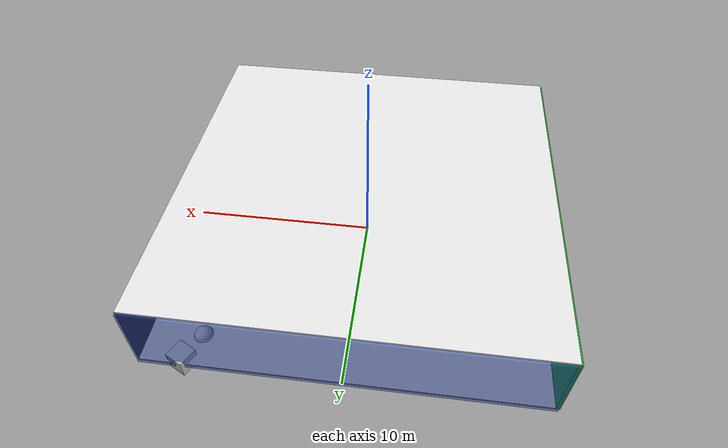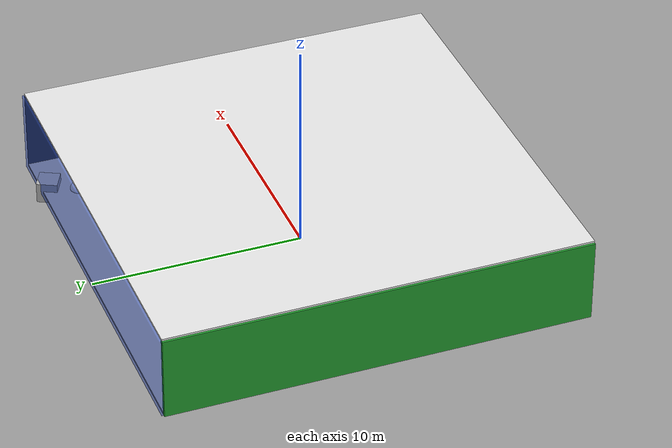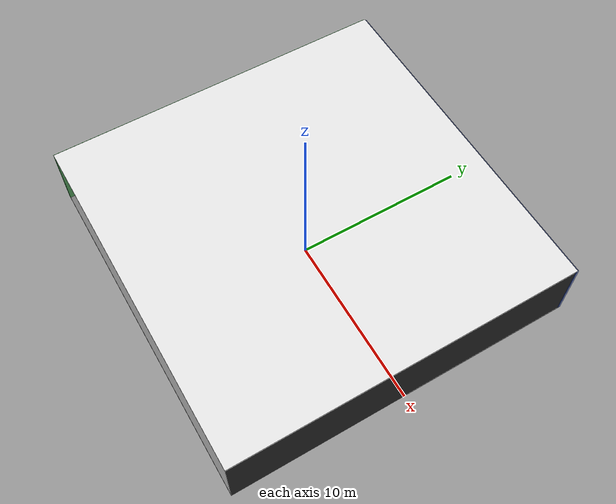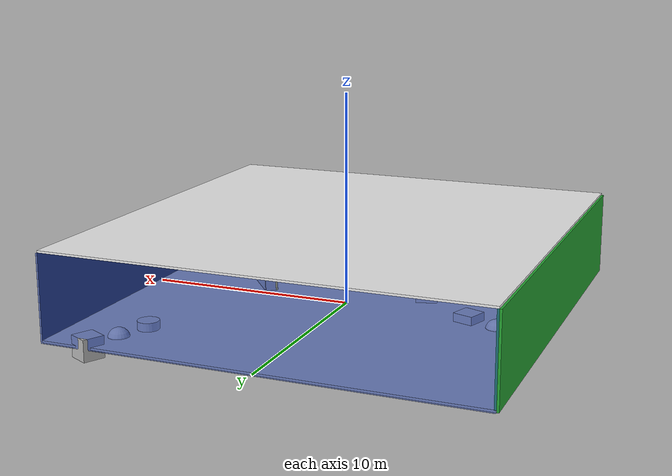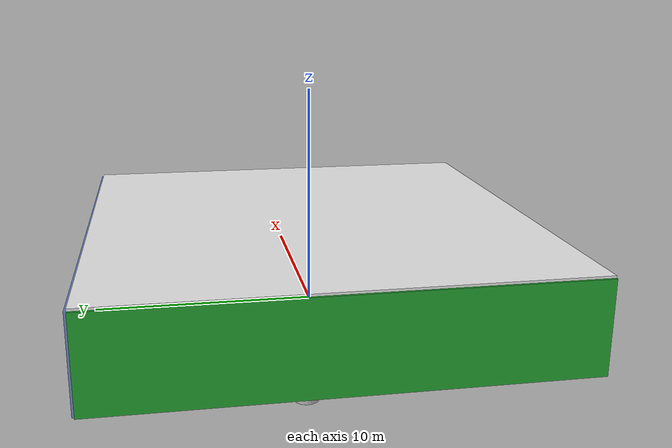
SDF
<sdf version="1.4">
 <world name="default">
  <physics type="ode">
   <max_step_size>0.001</max_step_size>
   <real_time_factor>1</real_time_factor>
   <real_time_update_rate>1000</real_time_update_rate>
   <gravity>0 0 -9.8</gravity>
  </physics>
  <scene><ambient>0.4 0.4 0.4 1</ambient><background>0.7 0.7 0.7 1</background><shadows>1</shadows></scene>
  <model name="Surrounding">
   <static>1</static>
   <link name="Ceiling">
    <collision name="Ceiling_Collision"><geometry><box><size>20 20 0.1</size></box></geometry></collision>
    <visual name="Ceiling_Visual">
     <geometry><box><size>20 20 0.1</size></box></geometry>
     <material>
      <script><uri>file://media/materials/scripts/gazebo.material</uri><name>Gazebo/WhiteGlow</name></script>
     </material>
    </visual>
    <pose>0 0 4.05 0 0 0</pose>
   </link>
   <link name="Wall_South">
    <collision name="Wall_South_Collision">
     <geometry><box><size>20 0 4</size></box></geometry>
     <pose>0 0 2 0 -0 0</pose>
    </collision>
    <visual name="Wall_South_Visual">
     <pose>0 0 2 0 -0 0</pose>
     <geometry><box><size>20 0 4</size></box></geometry>
     <material>
      <script><uri>file://media/materials/scripts/gazebo.material</uri><name>Gazebo/GreyTransparent</name></script>
     </material>
    </visual>
    <velocity_decay><linear>0</linear><angular>0</angular></velocity_decay>
    <pose>0 -10 0 0 -0 0</pose>
   </link>
   <link name="Wall_East">
    <collision name="Wall_21_Collision">
     <geometry><box><size>20 0 4</size></box></geometry>
     <pose>0 0 2 0 -0 0</pose>
    </collision>
    <visual name="Wall_21_Visual">
     <pose>0 0 2 0 -0 0</pose>
     <geometry><box><size>20 0 4</size></box></geometry>
     <material>
      <script><uri>file://media/materials/scripts/gazebo.material</uri><name>Gazebo/FlatBlack</name></script>
     </material>
    </visual>
    <velocity_decay><linear>0</linear><angular>0</angular></velocity_decay>
    <pose>10 0 0 0 -0 1.5708</pose>
   </link>
   <link name="Wall_North">
    <collision name="Wall_22_Collision">
     <geometry><box><size>20 0.2 4</size></box></geometry>
     <pose>0 0 2 0 -0 0</pose>
    </collision>
    <visual name="Wall_22_Visual">
     <pose>0 0 2 0 -0 0</pose>
     <geometry><box><size>20 0.2 4</size></box></geometry>
     <material>
      <script><uri>file://media/materials/scripts/gazebo.material</uri><name>Gazebo/BlueTransparent</name></script>
     </material>
    </visual>
    <velocity_decay><linear>0</linear><angular>0</angular></velocity_decay>
    <pose>0 10 0 0 -0 0</pose>
   </link>
   <link name="Wall_West">
    <collision name="Wall_23_Collision">
     <geometry><box><size>20 0.2 4</size></box></geometry>
     <pose>0 0 2 0 -0 0</pose>
    </collision>
    <visual name="Wall_23_Visual">
     <pose>0 0 2 0 -0 0</pose>
     <geometry><box><size>20 0.2 4</size></box></geometry>
     <material>
      <script><uri>file://media/materials/scripts/gazebo.material</uri><name>Gazebo/GreenGlow</name></script>
     </material>
    </visual>
    <velocity_decay><linear>0</linear><angular>0</angular></velocity_decay>
    <pose>-10 0 0 0 0 -1.5708</pose>
   </link>
   <link name="Ground_link">
    <collision name="collision">
     <pose>0 0 .05 0 -0 0</pose>
     <geometry><box><size>20 20 0.1</size></box></geometry>
    </collision>
    <visual name="visual">
     <pose>0 0 .05 0 -0 0</pose>
     <geometry><box><size>20 20 0.1</size></box></geometry>
     <material>
      <script><uri>file://media/materials/scripts/gazebo.material</uri><name>Gazebo/LightOn</name></script>
     </material>
    </visual>
   </link>
   <static>1</static>
  </model>
  <spherical_coordinates>
   <surface_model>EARTH_WGS84</surface_model>
   <latitude_deg>0</latitude_deg>
   <longitude_deg>0</longitude_deg>
   <elevation>0</elevation>
   <heading_deg>0</heading_deg>
  </spherical_coordinates>
  <light name="lightball_0" type="diffuse">
   <diffuse>0.8 0.8 0.8 1</diffuse>
   <specular>0.2 0.2 0.2 1</specular>
   <attenuation>
    <range>100</range>
    <constant>0.7</constant>
    <linear>0.01</linear>
    <quadratic>0.001</quadratic>
   </attenuation>
   <direction>-0.5 0.1 -0.9</direction>
   <pose>-2.66802603371 3.61333301947 0.765697689125 0 0 0</pose>
  </light>
  <light name="lightball_1" type="diffuse">
   <diffuse>0.8 0.8 0.8 1</diffuse>
   <specular>0.2 0.2 0.2 1</specular>
   <attenuation>
    <range>100</range>
    <constant>0.7</constant>
    <linear>0.01</linear>
    <quadratic>0.001</quadratic>
   </attenuation>
   <direction>-0.5 0.1 -0.9</direction>
   <pose>2.80738048687 5.41820412105 3.05951641056 0 0 0</pose>
  </light>
  <light name="lightball_2" type="diffuse">
   <diffuse>0.8 0.8 0.8 1</diffuse>
   <specular>0.2 0.2 0.2 1</specular>
   <attenuation>
    <range>100</range>
    <constant>0.7</constant>
    <linear>0.01</linear>
    <quadratic>0.001</quadratic>
   </attenuation>
   <direction>-0.5 0.1 -0.9</direction>
   <pose>5.01102892972 4.71813233569 3.30665507367 0 0 0</pose>
  </light>
  <light name="lightball_3" type="diffuse">
   <diffuse>0.8 0.8 0.8 1</diffuse>
   <specular>0.2 0.2 0.2 1</specular>
   <attenuation>
    <range>100</range>
    <constant>0.7</constant>
    <linear>0.01</linear>
    <quadratic>0.001</quadratic>
   </attenuation>
   <direction>-0.5 0.1 -0.9</direction>
   <pose>-0.734820331758 0.125020823253 2.40413693624 0 0 0</pose>
  </light>
  <light name="lightball_4" type="diffuse">
   <diffuse>0.8 0.8 0.8 1</diffuse>
   <specular>0.2 0.2 0.2 1</specular>
   <attenuation>
    <range>100</range>
    <constant>0.7</constant>
    <linear>0.01</linear>
    <quadratic>0.001</quadratic>
   </attenuation>
   <direction>-0.5 0.1 -0.9</direction>
   <pose>9.92261202112 -4.61572497229 3.49402600061 0 0 0</pose>
  </light>
  <light name="lightball_5" type="diffuse">
   <diffuse>0.8 0.8 0.8 1</diffuse>
   <specular>0.2 0.2 0.2 1</specular>
   <attenuation>
    <range>100</range>
    <constant>0.7</constant>
    <linear>0.01</linear>
    <quadratic>0.001</quadratic>
   </attenuation>
   <direction>-0.5 0.1 -0.9</direction>
   <pose>5.49268467625 4.61011221358 1.26114253935 0 0 0</pose>
  </light>
  <light name="lightball_6" type="diffuse">
   <diffuse>0.8 0.8 0.8 1</diffuse>
   <specular>0.2 0.2 0.2 1</specular>
   <attenuation>
    <range>100</range>
    <constant>0.7</constant>
    <linear>0.01</linear>
    <quadratic>0.001</quadratic>
   </attenuation>
   <direction>-0.5 0.1 -0.9</direction>
   <pose>8.22684310839 -1.00341346878 1.95915430305 0 0 0</pose>
  </light>
  <light name="lightball_7" type="diffuse">
   <diffuse>0.8 0.8 0.8 1</diffuse>
   <specular>0.2 0.2 0.2 1</specular>
   <attenuation>
    <range>100</range>
    <constant>0.7</constant>
    <linear>0.01</linear>
    <quadratic>0.001</quadratic>
   </attenuation>
   <direction>-0.5 0.1 -0.9</direction>
   <pose>-4.21488735123 -2.27299019937 2.94836227957 0 0 0</pose>
  </light>
  <light name="lightball_8" type="diffuse">
   <diffuse>0.8 0.8 0.8 1</diffuse>
   <specular>0.2 0.2 0.2 1</specular>
   <attenuation>
    <range>100</range>
    <constant>0.7</constant>
    <linear>0.01</linear>
    <quadratic>0.001</quadratic>
   </attenuation>
   <direction>-0.5 0.1 -0.9</direction>
   <pose>9.34597574044 7.63993849049 2.00883935844 0 0 0</pose>
  </light>
  <light name="lightball_9" type="diffuse">
   <diffuse>0.8 0.8 0.8 1</diffuse>
   <specular>0.2 0.2 0.2 1</specular>
   <attenuation>
    <range>100</range>
    <constant>0.7</constant>
    <linear>0.01</linear>
    <quadratic>0.001</quadratic>
   </attenuation>
   <direction>-0.5 0.1 -0.9</direction>
   <pose>9.96100833111 0.180668550494 1.14799554019 0 0 0</pose>
  </light>
  <light name="lightball_10" type="diffuse">
   <diffuse>0.8 0.8 0.8 1</diffuse>
   <specular>0.2 0.2 0.2 1</specular>
   <attenuation>
    <range>100</range>
    <constant>0.7</constant>
    <linear>0.01</linear>
    <quadratic>0.001</quadratic>
   </attenuation>
   <direction>-0.5 0.1 -0.9</direction>
   <pose>8.25075513262 0.723373666378 1.34452360364 0 0 0</pose>
  </light>
  <light name="lightball_11" type="diffuse">
   <diffuse>0.8 0.8 0.8 1</diffuse>
   <specular>0.2 0.2 0.2 1</specular>
   <attenuation>
    <range>100</range>
    <constant>0.7</constant>
    <linear>0.01</linear>
    <quadratic>0.001</quadratic>
   </attenuation>
   <direction>-0.5 0.1 -0.9</direction>
   <pose>-9.04026461382 6.77330682664 0.830916014065 0 0 0</pose>
  </light>
  <include><uri>model://table</uri><pose>-7.46265316904 -4.60877125962 0 0 0 1.60260400301</pose></include>
  <include>
   <uri>model://textured_shapes</uri>
   <pose>-7.59140374565 1.11372748592 0 0 0 1.23642282369</pose>
  </include>
  <include>
   <uri>model://textured_shapes</uri>
   <pose>-4.85622086005 -2.09599804682 0 0 0 1.894090047</pose>
  </include>
  <include>
   <uri>model://robocup_3Dsim_goal</uri>
   <pose>4.48012115292 -1.18206804793 0 0 0 0.681924551082</pose>
  </include>
  <include>
   <uri>model://textured_shapes</uri>
   <pose>7.27014096313 8.28046980618 0 0 0 2.67438373572</pose>
  </include>
 </world>
</sdf>

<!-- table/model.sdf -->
<sdf version="1.5">
  <model name="table">
    <static>true</static>
    <link name="link">
      <collision name="surface">
        <pose>0 0 1.0 0 0 0</pose>
        <geometry>
          <box>
            <size>1.5 0.8 0.03</size>
          </box>
        </geometry>
        <surface>
          <friction>
            <ode>
              <mu>0.6</mu>
              <mu2>0.6</mu2>
            </ode>
          </friction>
        </surface>
      </collision>
      <visual name="visual1">
        <pose>0 0 1.0 0 0 0</pose>
        <geometry>
          <box>
            <size>1.5 0.8 0.03</size>
          </box>
        </geometry>
        <material>
          <script>
            <uri>model://media/materials/scripts/gazebo.material</uri>
            <name>Gazebo/Wood</name>
          </script>
        </material>
      </visual>
      <collision name="front_left_leg">
        <pose>0.68 0.38 0.5 0 0 0</pose>
        <geometry>
          <cylinder>
            <radius>0.02</radius>
            <length>1.0</length>
          </cylinder>
        </geometry>
      </collision>
      <visual name="front_left_leg">
        <pose>0.68 0.38 0.5 0 0 0</pose>
        <geometry>
          <cylinder>
            <radius>0.02</radius>
            <length>1.0</length>
          </cylinder>
        </geometry>
        <material>
          <script>
            <uri>model://media/materials/scripts/gazebo.material</uri>
            <name>Gazebo/Grey</name>
          </script>
        </material>
      </visual>
      <collision name="front_right_leg">
        <pose>0.68 -0.38 0.5 0 0 0</pose>
        <geometry>
          <cylinder>
            <radius>0.02</radius>
            <length>1.0</length>
          </cylinder>
        </geometry>
      </collision>
      <visual name="front_right_leg">
        <pose>0.68 -0.38 0.5 0 0 0</pose>
        <geometry>
          <cylinder>
            <radius>0.02</radius>
            <length>1.0</length>
          </cylinder>
        </geometry>
        <material>
          <script>
            <uri>model://media/materials/scripts/gazebo.material</uri>
            <name>Gazebo/Grey</name>
          </script>
        </material>
      </visual>
      <collision name="back_right_leg">
        <pose>-0.68 -0.38 0.5 0 0 0</pose>
        <geometry>
          <cylinder>
            <radius>0.02</radius>
            <length>1.0</length>
          </cylinder>
        </geometry>
      </collision>
      <visual name="back_right_leg">
        <pose>-0.68 -0.38 0.5 0 0 0</pose>
        <geometry>
          <cylinder>
            <radius>0.02</radius>
            <length>1.0</length>
          </cylinder>
        </geometry>
        <material>
          <script>
            <uri>model://media/materials/scripts/gazebo.material</uri>
            <name>Gazebo/Grey</name>
          </script>
        </material>
      </visual>
      <collision name="back_left_leg">
        <pose>-0.68 0.38 0.5 0 0 0</pose>
        <geometry>
          <cylinder>
            <radius>0.02</radius>
            <length>1.0</length>
          </cylinder>
        </geometry>
      </collision>
      <visual name="back_left_leg">
        <pose>-0.68 0.38 0.5 0 0 0</pose>
        <geometry>
          <cylinder>
            <radius>0.02</radius>
            <length>1.0</length>
          </cylinder>
        </geometry>
        <material>
          <script>
            <uri>model://media/materials/scripts/gazebo.material</uri>
            <name>Gazebo/Grey</name>
          </script>
        </material>
      </visual>
    </link>
  </model>
</sdf>

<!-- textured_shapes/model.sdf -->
<sdf version="1.6">
  <model name="textured_shapes">
    <pose>0 0 0.5 0 0 0</pose>
    <link name="box">
      <pose>0 -1.5 0 0 0 0</pose>
      <collision name="collision">
        <geometry>
          <box>
            <size>1 1 1</size>
          </box>
        </geometry>
      </collision>
      <visual name="visual">
        <geometry>
          <box>
            <size>1 1 1</size>
          </box>
        </geometry>
        <material>
          <script>
            <uri>model://../model_source/models/textured_shapes/materials/scripts</uri>
            <uri>model://../model_source/models/textured_shapes/materials/textures</uri>
            <name>TexturedShape/Squares</name>
          </script>
        </material>
      </visual>
    </link>
    <link name="sphere">
      <collision name="collision">
        <geometry>
          <sphere>
            <radius>0.5</radius>
          </sphere>
        </geometry>
      </collision>
      <visual name="visual">
        <geometry>
          <sphere>
            <radius>0.5</radius>
          </sphere>
        </geometry>
        <material>
          <script>
            <uri>model://../model_source/models/textured_shapes/materials/scripts</uri>
            <uri>model://../model_source/models/textured_shapes/materials/textures</uri>
            <name>TexturedShape/Squares</name>
          </script>
        </material>
      </visual>
    </link>
    <link name="cylinder">
      <pose>0 1.5 0 0 0 0</pose>
      <collision name="collision">
        <geometry>
          <cylinder>
            <radius>0.5</radius>
            <length>1</length>
          </cylinder>
        </geometry>
      </collision>
      <visual name="visual">
        <geometry>
          <cylinder>
            <radius>0.5</radius>
            <length>1</length>
          </cylinder>
        </geometry>
        <material>
          <script>
            <uri>model://../model_source/models/textured_shapes/materials/scripts</uri>
            <uri>model://../model_source/models/textured_shapes/materials/textures</uri>
            <name>TexturedShape/Squares</name>
          </script>
        </material>
      </visual>
    </link>
  </model>
</sdf>

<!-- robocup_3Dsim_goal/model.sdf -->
<sdf version="1.5">
  <model name="robocup_3d_goal">
    <static>true</static>
    <link name="left_post">
      <pose>0 1.05 0.45 0 0 0</pose>
      <collision name="collision">
        <geometry>
          <cylinder>
            <radius>0.05</radius>
            <length>0.9</length>
          </cylinder>
        </geometry>
      </collision>
      <visual name="visual">
        <geometry>
          <cylinder>
            <radius>0.05</radius>
            <length>0.9</length>
          </cylinder>
        </geometry>
        <material>
          <script>
            <uri>file://media/materials/scripts/gazebo.material</uri>
            <name>Gazebo/ZincYellow</name>
          </script>
        </material>
      </visual>
    </link>
    <link name="left_support_horiz_lower">
      <pose>0.30 1.05 0.01 0 0 0</pose>
      <collision name="collision">
        <geometry>
          <box>
            <size>0.50 0.02 0.02</size>
          </box>
        </geometry>
      </collision>
      <visual name="visual">
        <geometry>
          <box>
            <size>0.50 0.02 0.02</size>
          </box>
        </geometry>
        <material>
          <script>
            <uri>file://media/materials/scripts/gazebo.material</uri>
            <name>Gazebo/White</name>
          </script>
        </material>
      </visual>
    </link>
    <link name="left_support_horiz_upper">
      <pose>0.30 1.05 0.79 0 0 0</pose>
      <collision name="collision">
        <geometry>
          <box>
            <size>0.50 0.02 0.02</size>
          </box>
        </geometry>
      </collision>
      <visual name="visual">
        <geometry>
          <box>
            <size>0.50 0.02 0.02</size>
          </box>
        </geometry>
        <material>
          <script>
            <uri>file://media/materials/scripts/gazebo.material</uri>
            <name>Gazebo/White</name>
          </script>
        </material>
      </visual>
    </link>
    <link name="left_support_vertical">
      <pose>0.56 1.05 0.4 0 1.5708 0</pose>
      <collision name="collision">
        <geometry>
          <box>
            <size>0.80 0.02 0.02</size>
          </box>
        </geometry>
      </collision>
      <visual name="visual">
        <geometry>
          <box>
            <size>0.80 0.02 0.02</size>
          </box>
        </geometry>
        <material>
          <script>
            <uri>file://media/materials/scripts/gazebo.material</uri>
            <name>Gazebo/White</name>
          </script>
        </material>
      </visual>
    </link>
    <link name="right_support_horiz_lower">
      <pose>0.30 -1.05 0.01 0 0 0</pose>
      <collision name="collision">
        <geometry>
          <box>
            <size>0.50 0.02 0.02</size>
          </box>
        </geometry>
      </collision>
      <visual name="visual">
        <geometry>
          <box>
            <size>0.50 0.02 0.02</size>
          </box>
        </geometry>
        <material>
          <script>
            <uri>file://media/materials/scripts/gazebo.material</uri>
            <name>Gazebo/White</name>
          </script>
        </material>
      </visual>
    </link>
    <link name="right_support_horiz_upper">
      <pose>0.30 -1.05 0.79 0 0 0</pose>
      <collision name="collision">
        <geometry>
          <box>
            <size>0.50 0.02 0.02</size>
          </box>
        </geometry>
      </collision>
      <visual name="visual">
        <geometry>
          <box>
            <size>0.50 0.02 0.02</size>
          </box>
        </geometry>
        <material>
          <script>
            <uri>file://media/materials/scripts/gazebo.material</uri>
            <name>Gazebo/White</name>
          </script>
        </material>
      </visual>
    </link>
    <link name="right_support_vertical">
      <pose>0.56 -1.05 0.4 0 1.5708 0</pose>
      <collision name="collision">
        <geometry>
          <box>
            <size>0.80 0.02 0.02</size>
          </box>
        </geometry>
      </collision>
      <visual name="visual">
        <geometry>
          <box>
            <size>0.80 0.02 0.02</size>
          </box>
        </geometry>
        <material>
          <script>
            <uri>file://media/materials/scripts/gazebo.material</uri>
            <name>Gazebo/White</name>
          </script>
        </material>
      </visual>
    </link>
    <link name="center_support_horiz_lower">
      <pose>0.56 0 0.01 0 1.5708 0</pose>
      <collision name="collision">
        <geometry>
          <box>
            <size>0.02 2.08 0.02</size>
          </box>
        </geometry>
      </collision>
      <visual name="visual">
        <geometry>
          <box>
            <size>0.02 2.08 0.02</size>
          </box>
        </geometry>
        <material>
          <script>
            <uri>file://media/materials/scripts/gazebo.material</uri>
            <name>Gazebo/White</name>
          </script>
        </material>
      </visual>
    </link>
    <link name="center_support_horiz_upper">
      <pose>0.56 0 0.79 0 1.5708 0</pose>
      <collision name="collision">
        <geometry>
          <box>
            <size>0.02 2.08 0.02</size>
          </box>
        </geometry>
      </collision>
      <visual name="visual">
        <geometry>
          <box>
            <size>0.02 2.08 0.02</size>
          </box>
        </geometry>
        <material>
          <script>
            <uri>file://media/materials/scripts/gazebo.material</uri>
            <name>Gazebo/White</name>
          </script>
        </material>
      </visual>
    </link>
    <link name="right_post">
      <pose>0 -1.05 0.45 0 0 0</pose>
      <collision name="collision">
        <geometry>
          <cylinder>
            <radius>0.05</radius>
            <length>0.9</length>
          </cylinder>
        </geometry>
      </collision>
      <visual name="visual">
        <geometry>
          <cylinder>
            <radius>0.05</radius>
            <length>0.9</length>
          </cylinder>
        </geometry>
        <material>
          <script>
            <uri>file://media/materials/scripts/gazebo.material</uri>
            <name>Gazebo/ZincYellow</name>
          </script>
        </material>
      </visual>
    </link>
    <link name="crossbar">
      <pose>0 0 0.85 1.57 1.57 0</pose>
      <collision name="collision">
        <geometry>
          <cylinder>
            <radius>0.05</radius>
            <length>2.0</length>
          </cylinder>
        </geometry>
      </collision>
      <visual name="visual">
        <geometry>
          <cylinder>
            <radius>0.05</radius>
            <length>2.0</length>
          </cylinder>
        </geometry>
        <material>
          <script>
            <uri>file://media/materials/scripts/gazebo.material</uri>
            <name>Gazebo/ZincYellow</name>
          </script>
        </material>
      </visual>
    </link>
    <link name="center_net">
      <pose>0.56 0 0.40 0 0 0</pose>
      <collision name="collision">
        <geometry>
          <box>
            <size>0.01 2.1 0.80</size>
          </box>
        </geometry>
      </collision>
      <visual name="visual">
        <geometry>
          <box>
            <size>0.01 2.1 0.80</size>
          </box>
        </geometry>
        <material>
          <script>
            <uri>model://../model_source/models/robocup09_spl_field/materials/scripts/</uri>
            <uri>model://../model_source/models/robocup09_spl_field/materials/textures/</uri>
            <name>RoboCup/Net</name>
          </script>
        </material>
      </visual>
    </link>
    <link name="left_net">
      <pose>0.30 1.05 0.40 0 0 0</pose>
      <collision name="collision">
        <geometry>
          <box>
            <size>0.50 0.01 0.76</size>
          </box>
        </geometry>
      </collision>
      <visual name="visual">
        <geometry>
          <box>
            <size>0.50 0.01 0.76</size>
          </box>
        </geometry>
        <material>
          <script>
            <uri>model://../model_source/models/robocup09_spl_field/materials/scripts/</uri>
            <uri>model://../model_source/models/robocup09_spl_field/materials/textures/</uri>
            <name>RoboCup/Net</name>
          </script>
        </material>
      </visual>
    </link>
    <link name="right_net">
      <pose>0.30 -1.05 0.40 0 0 0</pose>
      <collision name="collision">
        <geometry>
          <box>
            <size>0.50 0.01 0.76</size>
          </box>
        </geometry>
      </collision>
      <visual name="visual">
        <geometry>
          <box>
            <size>0.50 0.01 0.76</size>
          </box>
        </geometry>
        <material>
          <script>
            <uri>model://../model_source/models/robocup09_spl_field/materials/scripts/</uri>
            <uri>model://../model_source/models/robocup09_spl_field/materials/textures/</uri>
            <name>RoboCup/Net</name>
          </script>
        </material>
      </visual>
    </link>
  </model>
</sdf>
